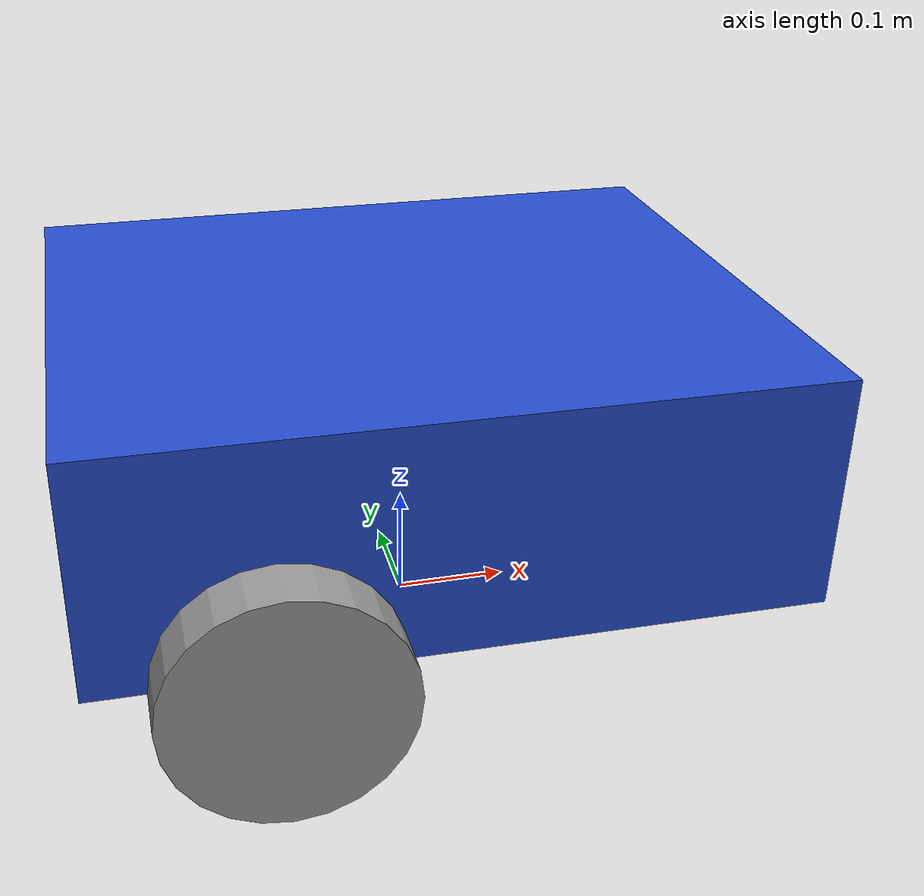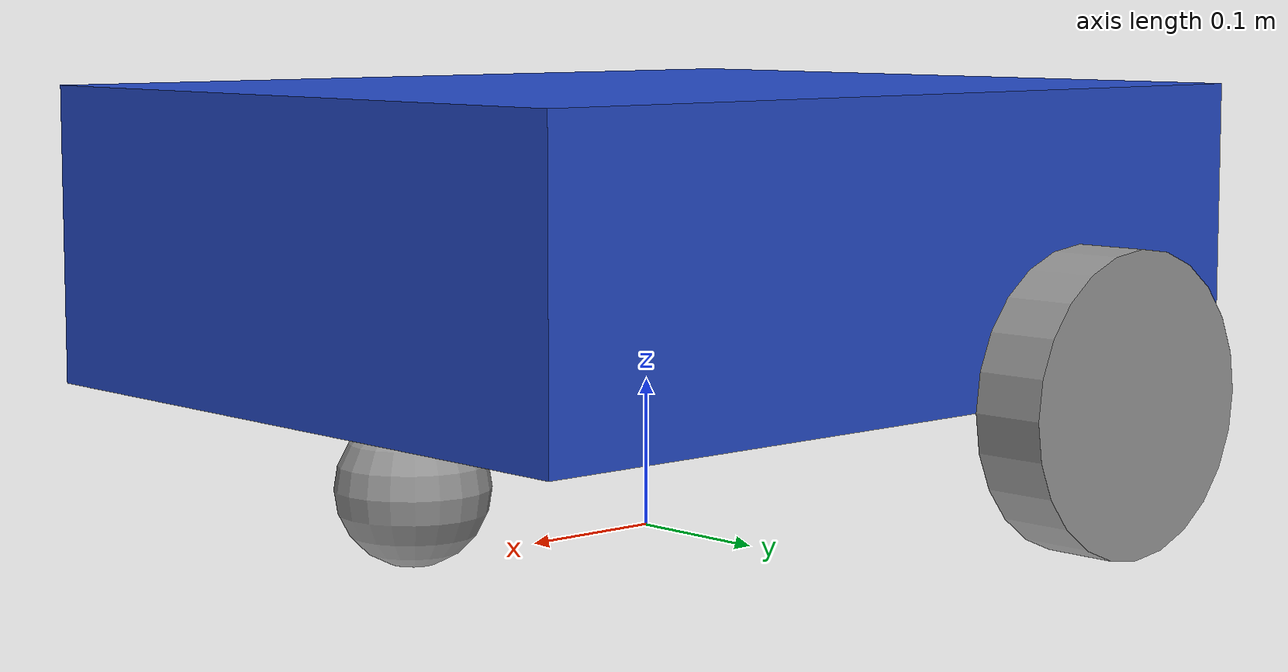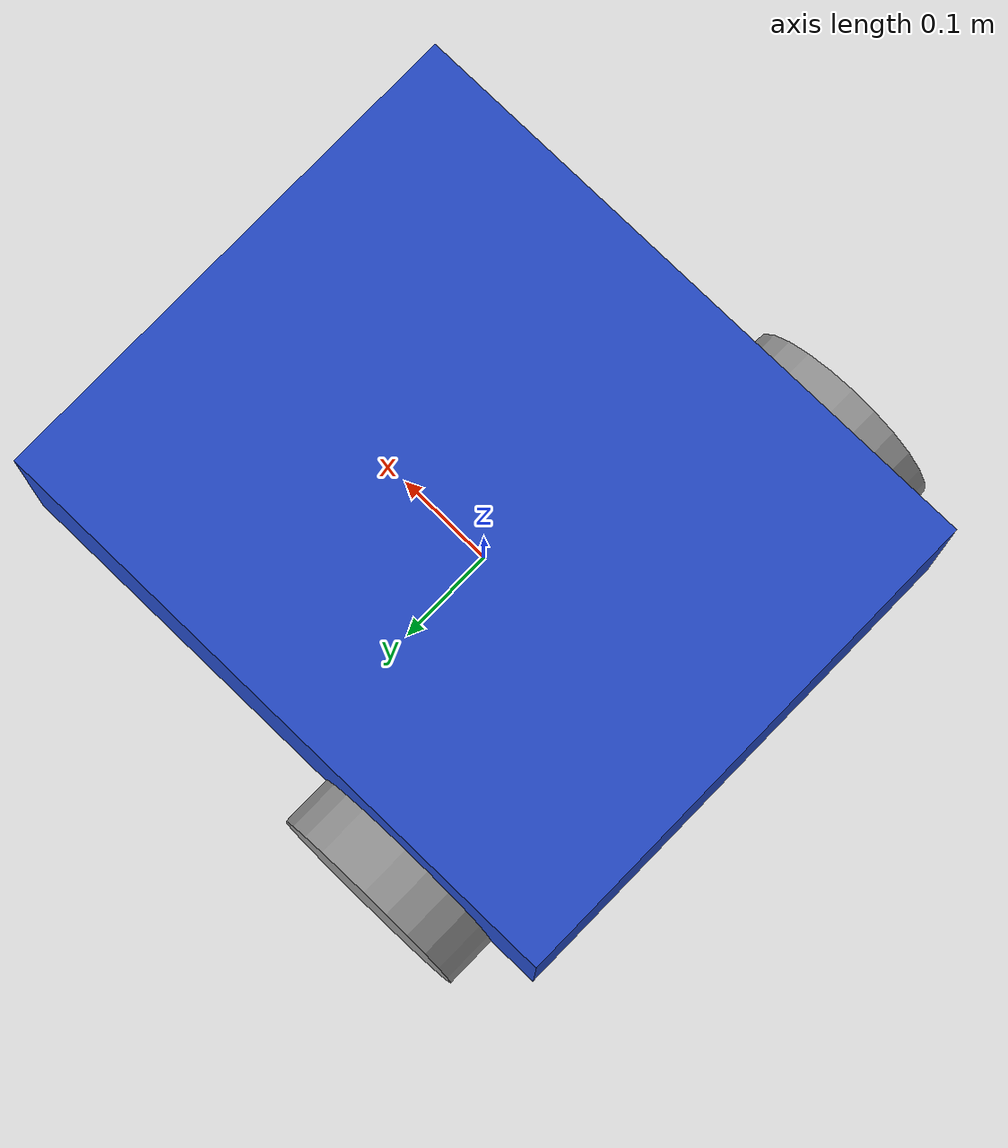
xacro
<?xml version="1.0"?>

<robot xmlns:xacro="http://www.ros.org/wiki/xacro">
    <xacro:property name="base_length" value="0.6" />
    <xacro:property name="base_width" value="0.5" />
    <xacro:property name="base_height" value="0.2" />
    <xacro:property name="wheel_radius" value="0.1" />
    <xacro:property name="wheel_length" value="0.05" />

    <link name="base_footprint" />

    <link name="base_link">
        <visual>
            <geometry>
                <box size="${base_length} ${base_width} ${base_height}" />
            </geometry>
            <origin xyz="0 0 ${base_height/2}" rpy="0 0 0" />
            <material name="blue" />
        </visual>
        <collision>
            <geometry>
                <box size="${base_length} ${base_width} ${base_height}" />
            </geometry>
            <origin xyz="0 0 ${base_height/2}" rpy="0 0 0" />
            <material name="blue" />
        </collision>
        <xacro:box_inertia m="5.0" l="${2*base_length}" w="${2*base_width}" h="${2*base_height}"
                           xyz="0 0 ${base_height/2.0}" rpy="0 0 0" />
    </link>

    <xacro:macro name="wheel_link" params="prefix">
        <link name="${prefix}_wheel_link">
            <visual>
                <geometry>
                    <cylinder radius="${wheel_radius}" length="${wheel_length}" />
                </geometry>
                <origin xyz="0 0 0" rpy="${pi/2.0} 0 0" />
                <material name="grey" />
            </visual>
            <collision>
                <geometry>
                    <cylinder radius="${wheel_radius}" length="${wheel_length}" />
                </geometry>
                <origin xyz="0 0 0" rpy="${pi/2.0} 0 0" />
                <material name="grey" />
            </collision>

            <xacro:cylinder_inertia m="1.0" r="${2*wheel_radius}" l="${2*base_height}"
                                    xyz="0 0 0" rpy="${pi/2.0} 0 0" />
        </link>
    </xacro:macro>

    <xacro:wheel_link prefix="right" />
    <xacro:wheel_link prefix="left" />

    <link name="caster_wheel_link">
        <visual>
            <geometry>
                <sphere radius="${wheel_radius/2.0}" />
            </geometry>
            <origin xyz="0 0 0" rpy="0 0 0" />
            <material name="grey" />
        </visual>
        <collision>
            <geometry>
                <sphere radius="${wheel_radius/2.0}" />
            </geometry>
            <origin xyz="0 0 0" rpy="0 0 0" />
            <material name="grey" />
        </collision>
        <xacro:sphere_inertia m="0.5" r="${2*wheel_radius/2.0}"
                              xyz="0 0 0" rpy="0 0 0" />
    </link>

    <joint name="base_joint" type="fixed">
        <parent link="base_footprint" />
        <child link="base_link" />
        <origin xyz="0 0 ${base_height/2}" rpy="0 0 0"/>
    </joint>

    <joint name="base_right_wheel_joint" type="continuous">
        <parent link="base_link" />
        <child link="right_wheel_link" />
        <origin xyz="${-base_length / 4.0} ${(base_width + wheel_length)/2} 0" rpy="0 0 0" />
        <axis xyz="0 1 0" />
    </joint>

    <joint name="base_left_wheel_joint" type="continuous">
        <parent link="base_link" />
        <child link="left_wheel_link" />
        <origin xyz="${-base_length / 4.0} ${-(base_width + wheel_length)/2} 0" rpy="0 0 0" />
        <axis xyz="0 1 0" />
    </joint>

    <joint name="base_caster_wheel_joint" type="fixed">
        <parent link="base_link" />
        <child link="caster_wheel_link" />
        <origin xyz="${base_length / 3.0} 0 ${-wheel_radius/2}" rpy="0 0 0" />
    </joint>

</robot>
